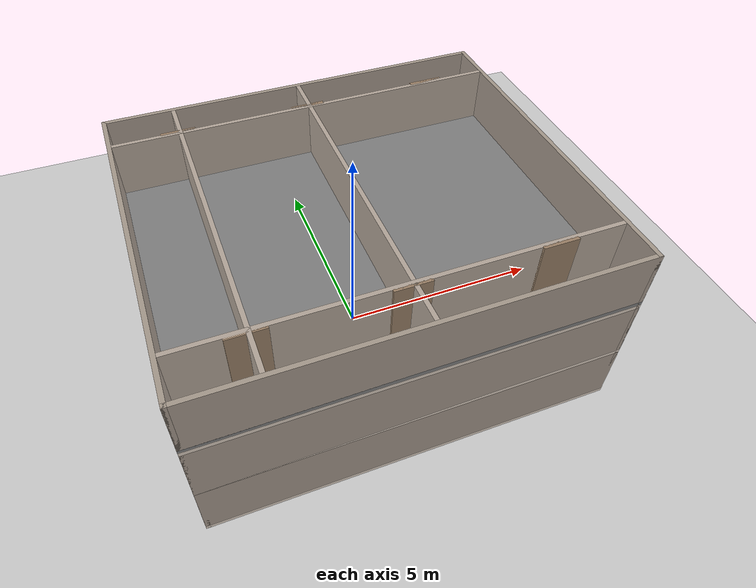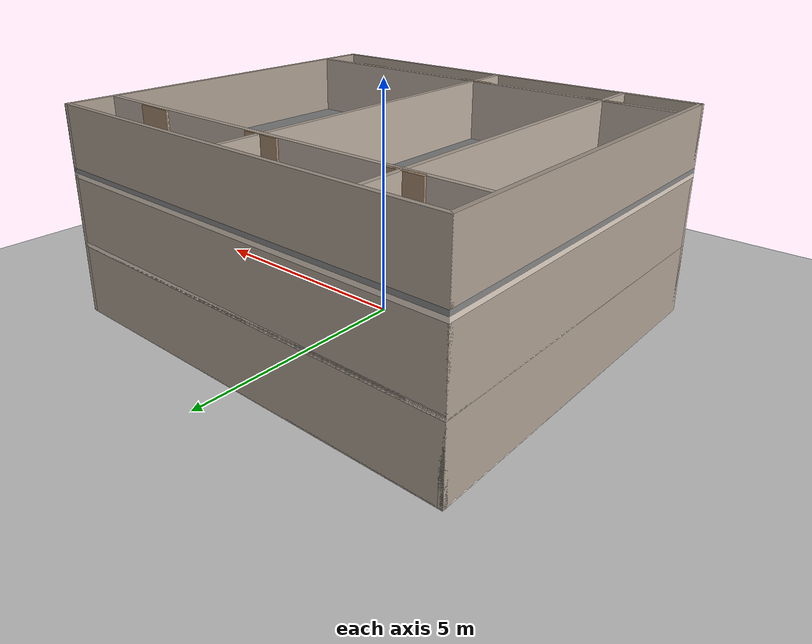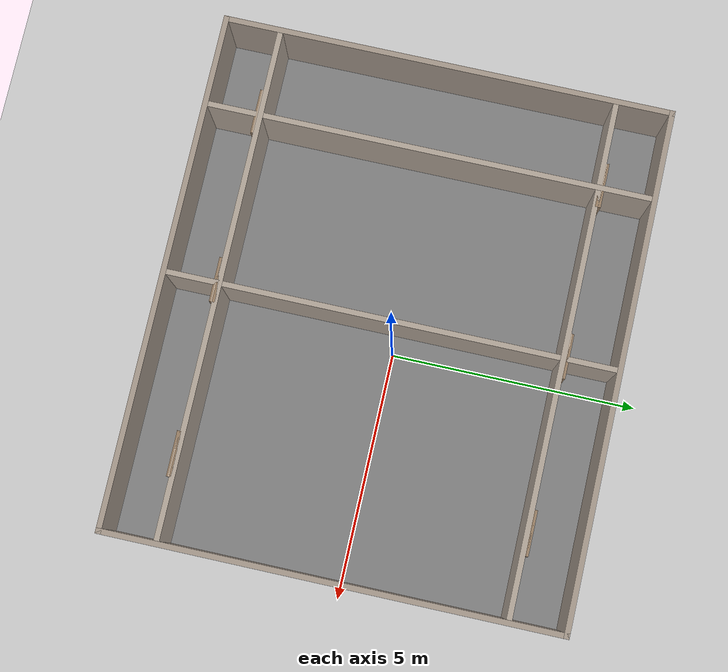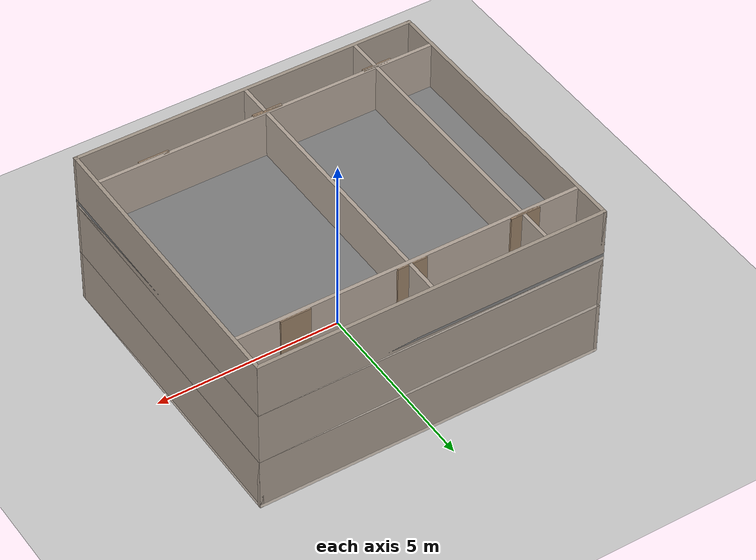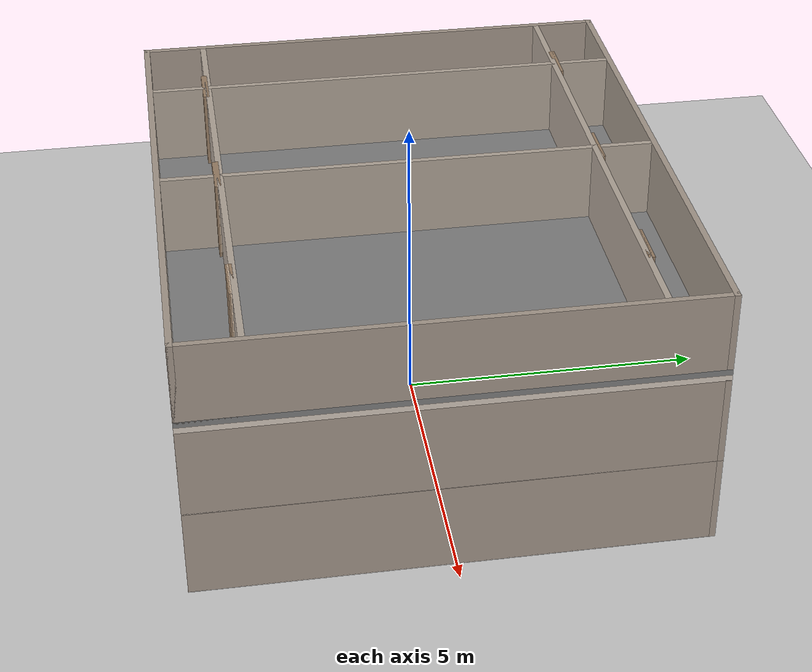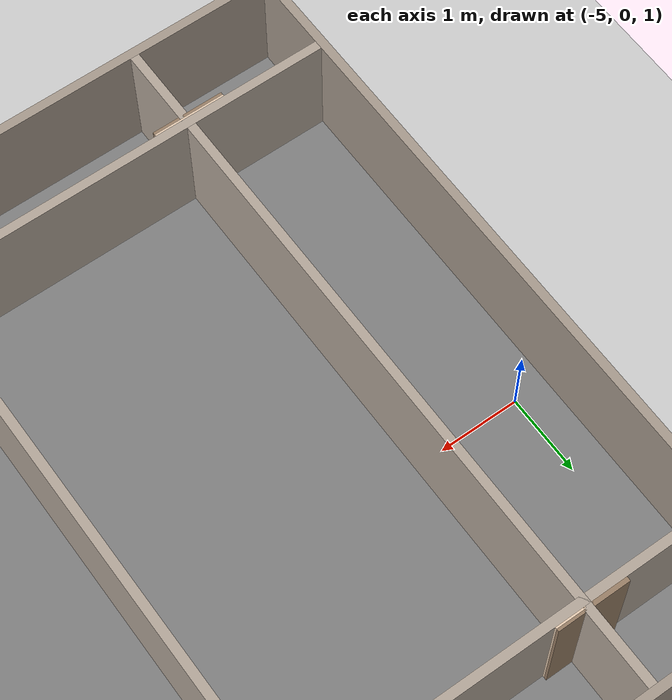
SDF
<?xml version="1.0" ?>
<sdf version="1.5">
    <world name="multi_floor_building">
        <gui fullscreen='false'>
            <camera name='user_camera'>
                <pose>15 -15 12 0 0.4 -1.5</pose>
                <view_controller>orbit</view_controller>
            </camera>
        </gui>
        <physics type="ode">
            <max_step_size>0.001</max_step_size>
            <real_time_factor>1</real_time_factor>
            <real_time_update_rate>1000</real_time_update_rate>
            <gravity>0 0 -9.81</gravity>
            <ode>
                <solver><type>quick</type><iters>50</iters><sor>1.3</sor></solver>
                <constraints><cfm>0.0</cfm><erp>0.2</erp><contact_max_correcting_vel>10.0</contact_max_correcting_vel><contact_surface_layer>0.001</contact_surface_layer></constraints>
            </ode>
        </physics>
        <scene>
            <sky><clouds><speed>12</speed></clouds></sky>
        </scene>
        <include><uri>model://sun</uri></include>
        <include><uri>model://ground_plane</uri></include>
        <include><uri>model://multi_floor_building</uri><pose>0 0 0 0 0 0</pose></include>
    </world>
</sdf>

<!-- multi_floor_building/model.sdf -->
<sdf version='1.7'>
  <model name='MultiFloorBuilding'>
    <static>true</static>

    <!-- Ground base -->
    <link name='ground_base'>
      <pose>0 0 -0.15 0 0 0</pose>
      <visual name='visual'>
        <geometry><box><size>10.4 9.2 0.2</size></box></geometry>
        <material><ambient>0.3 0.4 0.3 1</ambient><diffuse>0.4 0.5 0.4 1</diffuse></material>
      </visual>
      <collision name='collision'>
        <geometry><box><size>10.4 9.2 0.2</size></box></geometry>
      </collision>
    </link>

    <!-- Floor 0 -->
    <link name='floor_0'>
      <pose>0 0 0.05 0 0 0</pose>
      <visual name='visual'>
        <geometry><box><size>9.4 8.2 0.1</size></box></geometry>
        <material><ambient>0.8 0.75 0.7 1</ambient><diffuse>0.85 0.8 0.75 1</diffuse></material>
      </visual>
      <collision name='collision'>
        <geometry><box><size>9.4 8.2 0.1</size></box></geometry>
      </collision>
    </link>

    <!-- Outer walls -->
    <link name='outer_wall_north_0'>
      <pose>0 4.05 0.75 0 0 0</pose>
      <visual name='visual'>
        <geometry><box><size>9.4 0.1 1.5</size></box></geometry>
        <material><ambient>0.55 0.5 0.45 1</ambient><diffuse>0.65 0.6 0.55 1</diffuse></material>
      </visual>
      <collision name='collision'>
        <geometry><box><size>9.4 0.1 1.5</size></box></geometry>
      </collision>
    </link>

    <link name='outer_wall_south_0'>
      <pose>0 -4.05 0.75 0 0 0</pose>
      <visual name='visual'>
        <geometry><box><size>9.4 0.1 1.5</size></box></geometry>
        <material><ambient>0.55 0.5 0.45 1</ambient><diffuse>0.65 0.6 0.55 1</diffuse></material>
      </visual>
      <collision name='collision'>
        <geometry><box><size>9.4 0.1 1.5</size></box></geometry>
      </collision>
    </link>

    <link name='outer_wall_west_0'>
      <pose>-4.65 0 0.75 0 0 0</pose>
      <visual name='visual'>
        <geometry><box><size>0.1 8.2 1.5</size></box></geometry>
        <material><ambient>0.55 0.5 0.45 1</ambient><diffuse>0.65 0.6 0.55 1</diffuse></material>
      </visual>
      <collision name='collision'>
        <geometry><box><size>0.1 8.2 1.5</size></box></geometry>
      </collision>
    </link>

    <link name='outer_wall_east_0'>
      <pose>4.65 0 0.75 0 0 0</pose>
      <visual name='visual'>
        <geometry><box><size>0.1 8.2 1.5</size></box></geometry>
        <material><ambient>0.55 0.5 0.45 1</ambient><diffuse>0.65 0.6 0.55 1</diffuse></material>
      </visual>
      <collision name='collision'>
        <geometry><box><size>0.1 8.2 1.5</size></box></geometry>
      </collision>
    </link>

    <!-- Central corridor north wall -->
    <link name='corridor_wall_north_0'>
      <pose>0 3.05 0.75 0 0 0</pose>
      <visual name='visual'>
        <geometry><box><size>9.200000000000001 0.1 1.5</size></box></geometry>
        <material><ambient>0.6 0.55 0.5 1</ambient><diffuse>0.7 0.65 0.6 1</diffuse></material>
      </visual>
      <collision name='collision'>
        <geometry><box><size>9.200000000000001 0.1 1.5</size></box></geometry>
      </collision>
    </link>

    <!-- Central corridor south wall -->
    <link name='corridor_wall_south_0'>
      <pose>0 -3.05 0.75 0 0 0</pose>
      <visual name='visual'>
        <geometry><box><size>9.200000000000001 0.1 1.5</size></box></geometry>
        <material><ambient>0.6 0.55 0.5 1</ambient><diffuse>0.7 0.65 0.6 1</diffuse></material>
      </visual>
      <collision name='collision'>
        <geometry><box><size>9.200000000000001 0.1 1.5</size></box></geometry>
      </collision>
    </link>

    <!-- Room divider wall 0 on floor 0 -->
    <link name='room_divider_0_0'>
      <pose>-3.0500000000000007 0 0.75 0 0 0</pose>
      <visual name='visual'>
        <geometry><box><size>0.1 7.999999999999999 1.5</size></box></geometry>
        <material><ambient>0.6 0.55 0.5 1</ambient><diffuse>0.7 0.65 0.6 1</diffuse></material>
      </visual>
      <collision name='collision'>
        <geometry><box><size>0.1 7.999999999999999 1.5</size></box></geometry>
      </collision>
    </link>

    <!-- Room divider wall 1 on floor 0 -->
    <link name='room_divider_0_1'>
      <pose>0.04999999999999938 0 0.75 0 0 0</pose>
      <visual name='visual'>
        <geometry><box><size>0.1 7.999999999999999 1.5</size></box></geometry>
        <material><ambient>0.6 0.55 0.5 1</ambient><diffuse>0.7 0.65 0.6 1</diffuse></material>
      </visual>
      <collision name='collision'>
        <geometry><box><size>0.1 7.999999999999999 1.5</size></box></geometry>
      </collision>
    </link>

    <!-- North room 0 door frame on floor 0 -->
    <link name='north_door_frame_0_0'>
      <pose>-3.1000000000000005 3.1 0.75 0 0 0</pose>
      <visual name='visual'>
        <geometry><box><size>0.8 0.1 1.5</size></box></geometry>
        <material><ambient>0.5 0.4 0.3 1</ambient><diffuse>0.6 0.5 0.4 1</diffuse></material>
      </visual>
      <collision name='collision'>
        <geometry><box><size>0.8 0.1 1.5</size></box></geometry>
      </collision>
    </link>

    <!-- South room 0 door frame on floor 0 -->
    <link name='south_door_frame_0_0'>
      <pose>-3.1000000000000005 -3.1 0.75 0 0 0</pose>
      <visual name='visual'>
        <geometry><box><size>0.8 0.1 1.5</size></box></geometry>
        <material><ambient>0.5 0.4 0.3 1</ambient><diffuse>0.6 0.5 0.4 1</diffuse></material>
      </visual>
      <collision name='collision'>
        <geometry><box><size>0.8 0.1 1.5</size></box></geometry>
      </collision>
    </link>

    <!-- North room 0 door on floor 0 -->
    <link name='north_door_0_0'>
      <pose>-3.1000000000000005 3.11 0.75 0 0 0</pose>
      <visual name='visual'>
        <geometry><box><size>0.8 0.02 1.5</size></box></geometry>
        <material><ambient>0.8 0.7 0.6 1</ambient><diffuse>0.9 0.8 0.7 1</diffuse></material>
      </visual>
    </link>

    <!-- South room 0 door on floor 0 -->
    <link name='south_door_0_0'>
      <pose>-3.1000000000000005 -3.11 0.75 0 0 0</pose>
      <visual name='visual'>
        <geometry><box><size>0.8 0.02 1.5</size></box></geometry>
        <material><ambient>0.8 0.7 0.6 1</ambient><diffuse>0.9 0.8 0.7 1</diffuse></material>
      </visual>
    </link>

    <!-- North room 1 door frame on floor 0 -->
    <link name='north_door_frame_0_1'>
      <pose>-4.440892098500626e-16 3.1 0.75 0 0 0</pose>
      <visual name='visual'>
        <geometry><box><size>0.8 0.1 1.5</size></box></geometry>
        <material><ambient>0.5 0.4 0.3 1</ambient><diffuse>0.6 0.5 0.4 1</diffuse></material>
      </visual>
      <collision name='collision'>
        <geometry><box><size>0.8 0.1 1.5</size></box></geometry>
      </collision>
    </link>

    <!-- South room 1 door frame on floor 0 -->
    <link name='south_door_frame_0_1'>
      <pose>-4.440892098500626e-16 -3.1 0.75 0 0 0</pose>
      <visual name='visual'>
        <geometry><box><size>0.8 0.1 1.5</size></box></geometry>
        <material><ambient>0.5 0.4 0.3 1</ambient><diffuse>0.6 0.5 0.4 1</diffuse></material>
      </visual>
      <collision name='collision'>
        <geometry><box><size>0.8 0.1 1.5</size></box></geometry>
      </collision>
    </link>

    <!-- North room 1 door on floor 0 -->
    <link name='north_door_0_1'>
      <pose>-4.440892098500626e-16 3.11 0.75 0 0 0</pose>
      <visual name='visual'>
        <geometry><box><size>0.8 0.02 1.5</size></box></geometry>
        <material><ambient>0.8 0.7 0.6 1</ambient><diffuse>0.9 0.8 0.7 1</diffuse></material>
      </visual>
    </link>

    <!-- South room 1 door on floor 0 -->
    <link name='south_door_0_1'>
      <pose>-4.440892098500626e-16 -3.11 0.75 0 0 0</pose>
      <visual name='visual'>
        <geometry><box><size>0.8 0.02 1.5</size></box></geometry>
        <material><ambient>0.8 0.7 0.6 1</ambient><diffuse>0.9 0.8 0.7 1</diffuse></material>
      </visual>
    </link>

    <!-- North room 2 door frame on floor 0 -->
    <link name='north_door_frame_0_2'>
      <pose>3.0999999999999996 3.1 0.75 0 0 0</pose>
      <visual name='visual'>
        <geometry><box><size>0.8 0.1 1.5</size></box></geometry>
        <material><ambient>0.5 0.4 0.3 1</ambient><diffuse>0.6 0.5 0.4 1</diffuse></material>
      </visual>
      <collision name='collision'>
        <geometry><box><size>0.8 0.1 1.5</size></box></geometry>
      </collision>
    </link>

    <!-- South room 2 door frame on floor 0 -->
    <link name='south_door_frame_0_2'>
      <pose>3.0999999999999996 -3.1 0.75 0 0 0</pose>
      <visual name='visual'>
        <geometry><box><size>0.8 0.1 1.5</size></box></geometry>
        <material><ambient>0.5 0.4 0.3 1</ambient><diffuse>0.6 0.5 0.4 1</diffuse></material>
      </visual>
      <collision name='collision'>
        <geometry><box><size>0.8 0.1 1.5</size></box></geometry>
      </collision>
    </link>

    <!-- North room 2 door on floor 0 -->
    <link name='north_door_0_2'>
      <pose>3.0999999999999996 3.11 0.75 0 0 0</pose>
      <visual name='visual'>
        <geometry><box><size>0.8 0.02 1.5</size></box></geometry>
        <material><ambient>0.8 0.7 0.6 1</ambient><diffuse>0.9 0.8 0.7 1</diffuse></material>
      </visual>
    </link>

    <!-- South room 2 door on floor 0 -->
    <link name='south_door_0_2'>
      <pose>3.0999999999999996 -3.11 0.75 0 0 0</pose>
      <visual name='visual'>
        <geometry><box><size>0.8 0.02 1.5</size></box></geometry>
        <material><ambient>0.8 0.7 0.6 1</ambient><diffuse>0.9 0.8 0.7 1</diffuse></material>
      </visual>
    </link>

    <link name='stair_0_0'>
      <pose>-4.000000000000001 -2.85 0.175 0 0 0</pose>
      <visual name='visual'>
        <geometry><box><size>1.2 0.3 0.15</size></box></geometry>
        <material><ambient>0.5 0.5 0.5 1</ambient><diffuse>0.6 0.6 0.6 1</diffuse></material>
      </visual>
      <collision name='collision'>
        <geometry><box><size>1.2 0.3 0.15</size></box></geometry>
      </collision>
    </link>

    <link name='stair_0_1'>
      <pose>-4.000000000000001 -2.5500000000000003 0.32499999999999996 0 0 0</pose>
      <visual name='visual'>
        <geometry><box><size>1.2 0.3 0.15</size></box></geometry>
        <material><ambient>0.5 0.5 0.5 1</ambient><diffuse>0.6 0.6 0.6 1</diffuse></material>
      </visual>
      <collision name='collision'>
        <geometry><box><size>1.2 0.3 0.15</size></box></geometry>
      </collision>
    </link>

    <link name='stair_0_2'>
      <pose>-4.000000000000001 -2.25 0.475 0 0 0</pose>
      <visual name='visual'>
        <geometry><box><size>1.2 0.3 0.15</size></box></geometry>
        <material><ambient>0.5 0.5 0.5 1</ambient><diffuse>0.6 0.6 0.6 1</diffuse></material>
      </visual>
      <collision name='collision'>
        <geometry><box><size>1.2 0.3 0.15</size></box></geometry>
      </collision>
    </link>

    <link name='stair_0_3'>
      <pose>-4.000000000000001 -1.9500000000000002 0.625 0 0 0</pose>
      <visual name='visual'>
        <geometry><box><size>1.2 0.3 0.15</size></box></geometry>
        <material><ambient>0.5 0.5 0.5 1</ambient><diffuse>0.6 0.6 0.6 1</diffuse></material>
      </visual>
      <collision name='collision'>
        <geometry><box><size>1.2 0.3 0.15</size></box></geometry>
      </collision>
    </link>

    <link name='stair_0_4'>
      <pose>-4.000000000000001 -1.6500000000000001 0.7749999999999999 0 0 0</pose>
      <visual name='visual'>
        <geometry><box><size>1.2 0.3 0.15</size></box></geometry>
        <material><ambient>0.5 0.5 0.5 1</ambient><diffuse>0.6 0.6 0.6 1</diffuse></material>
      </visual>
      <collision name='collision'>
        <geometry><box><size>1.2 0.3 0.15</size></box></geometry>
      </collision>
    </link>

    <link name='stair_0_5'>
      <pose>-4.000000000000001 -1.35 0.925 0 0 0</pose>
      <visual name='visual'>
        <geometry><box><size>1.2 0.3 0.15</size></box></geometry>
        <material><ambient>0.5 0.5 0.5 1</ambient><diffuse>0.6 0.6 0.6 1</diffuse></material>
      </visual>
      <collision name='collision'>
        <geometry><box><size>1.2 0.3 0.15</size></box></geometry>
      </collision>
    </link>

    <link name='stair_0_6'>
      <pose>-4.000000000000001 -1.0500000000000003 1.075 0 0 0</pose>
      <visual name='visual'>
        <geometry><box><size>1.2 0.3 0.15</size></box></geometry>
        <material><ambient>0.5 0.5 0.5 1</ambient><diffuse>0.6 0.6 0.6 1</diffuse></material>
      </visual>
      <collision name='collision'>
        <geometry><box><size>1.2 0.3 0.15</size></box></geometry>
      </collision>
    </link>

    <link name='stair_0_7'>
      <pose>-4.000000000000001 -0.75 1.225 0 0 0</pose>
      <visual name='visual'>
        <geometry><box><size>1.2 0.3 0.15</size></box></geometry>
        <material><ambient>0.5 0.5 0.5 1</ambient><diffuse>0.6 0.6 0.6 1</diffuse></material>
      </visual>
      <collision name='collision'>
        <geometry><box><size>1.2 0.3 0.15</size></box></geometry>
      </collision>
    </link>

    <link name='stair_0_8'>
      <pose>-4.000000000000001 -0.4500000000000002 1.375 0 0 0</pose>
      <visual name='visual'>
        <geometry><box><size>1.2 0.3 0.15</size></box></geometry>
        <material><ambient>0.5 0.5 0.5 1</ambient><diffuse>0.6 0.6 0.6 1</diffuse></material>
      </visual>
      <collision name='collision'>
        <geometry><box><size>1.2 0.3 0.15</size></box></geometry>
      </collision>
    </link>

    <link name='stair_0_9'>
      <pose>-4.000000000000001 -0.15000000000000036 1.525 0 0 0</pose>
      <visual name='visual'>
        <geometry><box><size>1.2 0.3 0.15</size></box></geometry>
        <material><ambient>0.5 0.5 0.5 1</ambient><diffuse>0.6 0.6 0.6 1</diffuse></material>
      </visual>
      <collision name='collision'>
        <geometry><box><size>1.2 0.3 0.15</size></box></geometry>
      </collision>
    </link>

    <!-- Floor 1 -->
    <link name='floor_1'>
      <pose>0 0 1.55 0 0 0</pose>
      <visual name='visual'>
        <geometry><box><size>9.4 8.2 0.1</size></box></geometry>
        <material><ambient>0.8 0.75 0.7 1</ambient><diffuse>0.85 0.8 0.75 1</diffuse></material>
      </visual>
      <collision name='collision'>
        <geometry><box><size>9.4 8.2 0.1</size></box></geometry>
      </collision>
    </link>

    <!-- Outer walls -->
    <link name='outer_wall_north_1'>
      <pose>0 4.05 2.25 0 0 0</pose>
      <visual name='visual'>
        <geometry><box><size>9.4 0.1 1.5</size></box></geometry>
        <material><ambient>0.55 0.5 0.45 1</ambient><diffuse>0.65 0.6 0.55 1</diffuse></material>
      </visual>
      <collision name='collision'>
        <geometry><box><size>9.4 0.1 1.5</size></box></geometry>
      </collision>
    </link>

    <link name='outer_wall_south_1'>
      <pose>0 -4.05 2.25 0 0 0</pose>
      <visual name='visual'>
        <geometry><box><size>9.4 0.1 1.5</size></box></geometry>
        <material><ambient>0.55 0.5 0.45 1</ambient><diffuse>0.65 0.6 0.55 1</diffuse></material>
      </visual>
      <collision name='collision'>
        <geometry><box><size>9.4 0.1 1.5</size></box></geometry>
      </collision>
    </link>

    <link name='outer_wall_west_1'>
      <pose>-4.65 0 2.25 0 0 0</pose>
      <visual name='visual'>
        <geometry><box><size>0.1 8.2 1.5</size></box></geometry>
        <material><ambient>0.55 0.5 0.45 1</ambient><diffuse>0.65 0.6 0.55 1</diffuse></material>
      </visual>
      <collision name='collision'>
        <geometry><box><size>0.1 8.2 1.5</size></box></geometry>
      </collision>
    </link>

    <link name='outer_wall_east_1'>
      <pose>4.65 0 2.25 0 0 0</pose>
      <visual name='visual'>
        <geometry><box><size>0.1 8.2 1.5</size></box></geometry>
        <material><ambient>0.55 0.5 0.45 1</ambient><diffuse>0.65 0.6 0.55 1</diffuse></material>
      </visual>
      <collision name='collision'>
        <geometry><box><size>0.1 8.2 1.5</size></box></geometry>
      </collision>
    </link>

    <!-- Central corridor north wall -->
    <link name='corridor_wall_north_1'>
      <pose>0 3.05 2.25 0 0 0</pose>
      <visual name='visual'>
        <geometry><box><size>9.200000000000001 0.1 1.5</size></box></geometry>
        <material><ambient>0.6 0.55 0.5 1</ambient><diffuse>0.7 0.65 0.6 1</diffuse></material>
      </visual>
      <collision name='collision'>
        <geometry><box><size>9.200000000000001 0.1 1.5</size></box></geometry>
      </collision>
    </link>

    <!-- Central corridor south wall -->
    <link name='corridor_wall_south_1'>
      <pose>0 -3.05 2.25 0 0 0</pose>
      <visual name='visual'>
        <geometry><box><size>9.200000000000001 0.1 1.5</size></box></geometry>
        <material><ambient>0.6 0.55 0.5 1</ambient><diffuse>0.7 0.65 0.6 1</diffuse></material>
      </visual>
      <collision name='collision'>
        <geometry><box><size>9.200000000000001 0.1 1.5</size></box></geometry>
      </collision>
    </link>

    <!-- Room divider wall 0 on floor 1 -->
    <link name='room_divider_1_0'>
      <pose>-3.0500000000000007 0 2.25 0 0 0</pose>
      <visual name='visual'>
        <geometry><box><size>0.1 7.999999999999999 1.5</size></box></geometry>
        <material><ambient>0.6 0.55 0.5 1</ambient><diffuse>0.7 0.65 0.6 1</diffuse></material>
      </visual>
      <collision name='collision'>
        <geometry><box><size>0.1 7.999999999999999 1.5</size></box></geometry>
      </collision>
    </link>

    <!-- Room divider wall 1 on floor 1 -->
    <link name='room_divider_1_1'>
      <pose>0.04999999999999938 0 2.25 0 0 0</pose>
      <visual name='visual'>
        <geometry><box><size>0.1 7.999999999999999 1.5</size></box></geometry>
        <material><ambient>0.6 0.55 0.5 1</ambient><diffuse>0.7 0.65 0.6 1</diffuse></material>
      </visual>
      <collision name='collision'>
        <geometry><box><size>0.1 7.999999999999999 1.5</size></box></geometry>
      </collision>
    </link>

    <!-- North room 0 door frame on floor 1 -->
    <link name='north_door_frame_1_0'>
      <pose>-3.1000000000000005 3.1 2.25 0 0 0</pose>
      <visual name='visual'>
        <geometry><box><size>0.8 0.1 1.5</size></box></geometry>
        <material><ambient>0.5 0.4 0.3 1</ambient><diffuse>0.6 0.5 0.4 1</diffuse></material>
      </visual>
      <collision name='collision'>
        <geometry><box><size>0.8 0.1 1.5</size></box></geometry>
      </collision>
    </link>

    <!-- South room 0 door frame on floor 1 -->
    <link name='south_door_frame_1_0'>
      <pose>-3.1000000000000005 -3.1 2.25 0 0 0</pose>
      <visual name='visual'>
        <geometry><box><size>0.8 0.1 1.5</size></box></geometry>
        <material><ambient>0.5 0.4 0.3 1</ambient><diffuse>0.6 0.5 0.4 1</diffuse></material>
      </visual>
      <collision name='collision'>
        <geometry><box><size>0.8 0.1 1.5</size></box></geometry>
      </collision>
    </link>

    <!-- North room 0 door on floor 1 -->
    <link name='north_door_1_0'>
      <pose>-3.1000000000000005 3.11 2.25 0 0 0</pose>
      <visual name='visual'>
        <geometry><box><size>0.8 0.02 1.5</size></box></geometry>
        <material><ambient>0.8 0.7 0.6 1</ambient><diffuse>0.9 0.8 0.7 1</diffuse></material>
      </visual>
    </link>

    <!-- South room 0 door on floor 1 -->
    <link name='south_door_1_0'>
      <pose>-3.1000000000000005 -3.11 2.25 0 0 0</pose>
      <visual name='visual'>
        <geometry><box><size>0.8 0.02 1.5</size></box></geometry>
        <material><ambient>0.8 0.7 0.6 1</ambient><diffuse>0.9 0.8 0.7 1</diffuse></material>
      </visual>
    </link>

    <!-- North room 1 door frame on floor 1 -->
    <link name='north_door_frame_1_1'>
      <pose>-4.440892098500626e-16 3.1 2.25 0 0 0</pose>
      <visual name='visual'>
        <geometry><box><size>0.8 0.1 1.5</size></box></geometry>
        <material><ambient>0.5 0.4 0.3 1</ambient><diffuse>0.6 0.5 0.4 1</diffuse></material>
      </visual>
      <collision name='collision'>
        <geometry><box><size>0.8 0.1 1.5</size></box></geometry>
      </collision>
    </link>

    <!-- South room 1 door frame on floor 1 -->
    <link name='south_door_frame_1_1'>
      <pose>-4.440892098500626e-16 -3.1 2.25 0 0 0</pose>
      <visual name='visual'>
        <geometry><box><size>0.8 0.1 1.5</size></box></geometry>
        <material><ambient>0.5 0.4 0.3 1</ambient><diffuse>0.6 0.5 0.4 1</diffuse></material>
      </visual>
      <collision name='collision'>
        <geometry><box><size>0.8 0.1 1.5</size></box></geometry>
      </collision>
    </link>

    <!-- North room 1 door on floor 1 -->
    <link name='north_door_1_1'>
      <pose>-4.440892098500626e-16 3.11 2.25 0 0 0</pose>
      <visual name='visual'>
        <geometry><box><size>0.8 0.02 1.5</size></box></geometry>
        <material><ambient>0.8 0.7 0.6 1</ambient><diffuse>0.9 0.8 0.7 1</diffuse></material>
      </visual>
    </link>

    <!-- South room 1 door on floor 1 -->
    <link name='south_door_1_1'>
      <pose>-4.440892098500626e-16 -3.11 2.25 0 0 0</pose>
      <visual name='visual'>
        <geometry><box><size>0.8 0.02 1.5</size></box></geometry>
        <material><ambient>0.8 0.7 0.6 1</ambient><diffuse>0.9 0.8 0.7 1</diffuse></material>
      </visual>
    </link>

    <!-- North room 2 door frame on floor 1 -->
    <link name='north_door_frame_1_2'>
      <pose>3.0999999999999996 3.1 2.25 0 0 0</pose>
      <visual name='visual'>
        <geometry><box><size>0.8 0.1 1.5</size></box></geometry>
        <material><ambient>0.5 0.4 0.3 1</ambient><diffuse>0.6 0.5 0.4 1</diffuse></material>
      </visual>
      <collision name='collision'>
        <geometry><box><size>0.8 0.1 1.5</size></box></geometry>
      </collision>
    </link>

    <!-- South room 2 door frame on floor 1 -->
    <link name='south_door_frame_1_2'>
      <pose>3.0999999999999996 -3.1 2.25 0 0 0</pose>
      <visual name='visual'>
        <geometry><box><size>0.8 0.1 1.5</size></box></geometry>
        <material><ambient>0.5 0.4 0.3 1</ambient><diffuse>0.6 0.5 0.4 1</diffuse></material>
      </visual>
      <collision name='collision'>
        <geometry><box><size>0.8 0.1 1.5</size></box></geometry>
      </collision>
    </link>

    <!-- North room 2 door on floor 1 -->
    <link name='north_door_1_2'>
      <pose>3.0999999999999996 3.11 2.25 0 0 0</pose>
      <visual name='visual'>
        <geometry><box><size>0.8 0.02 1.5</size></box></geometry>
        <material><ambient>0.8 0.7 0.6 1</ambient><diffuse>0.9 0.8 0.7 1</diffuse></material>
      </visual>
    </link>

    <!-- South room 2 door on floor 1 -->
    <link name='south_door_1_2'>
      <pose>3.0999999999999996 -3.11 2.25 0 0 0</pose>
      <visual name='visual'>
        <geometry><box><size>0.8 0.02 1.5</size></box></geometry>
        <material><ambient>0.8 0.7 0.6 1</ambient><diffuse>0.9 0.8 0.7 1</diffuse></material>
      </visual>
    </link>

    <link name='stair_1_0'>
      <pose>-4.000000000000001 -2.85 1.675 0 0 0</pose>
      <visual name='visual'>
        <geometry><box><size>1.2 0.3 0.15</size></box></geometry>
        <material><ambient>0.5 0.5 0.5 1</ambient><diffuse>0.6 0.6 0.6 1</diffuse></material>
      </visual>
      <collision name='collision'>
        <geometry><box><size>1.2 0.3 0.15</size></box></geometry>
      </collision>
    </link>

    <link name='stair_1_1'>
      <pose>-4.000000000000001 -2.5500000000000003 1.825 0 0 0</pose>
      <visual name='visual'>
        <geometry><box><size>1.2 0.3 0.15</size></box></geometry>
        <material><ambient>0.5 0.5 0.5 1</ambient><diffuse>0.6 0.6 0.6 1</diffuse></material>
      </visual>
      <collision name='collision'>
        <geometry><box><size>1.2 0.3 0.15</size></box></geometry>
      </collision>
    </link>

    <link name='stair_1_2'>
      <pose>-4.000000000000001 -2.25 1.975 0 0 0</pose>
      <visual name='visual'>
        <geometry><box><size>1.2 0.3 0.15</size></box></geometry>
        <material><ambient>0.5 0.5 0.5 1</ambient><diffuse>0.6 0.6 0.6 1</diffuse></material>
      </visual>
      <collision name='collision'>
        <geometry><box><size>1.2 0.3 0.15</size></box></geometry>
      </collision>
    </link>

    <link name='stair_1_3'>
      <pose>-4.000000000000001 -1.9500000000000002 2.125 0 0 0</pose>
      <visual name='visual'>
        <geometry><box><size>1.2 0.3 0.15</size></box></geometry>
        <material><ambient>0.5 0.5 0.5 1</ambient><diffuse>0.6 0.6 0.6 1</diffuse></material>
      </visual>
      <collision name='collision'>
        <geometry><box><size>1.2 0.3 0.15</size></box></geometry>
      </collision>
    </link>

    <link name='stair_1_4'>
      <pose>-4.000000000000001 -1.6500000000000001 2.275 0 0 0</pose>
      <visual name='visual'>
        <geometry><box><size>1.2 0.3 0.15</size></box></geometry>
        <material><ambient>0.5 0.5 0.5 1</ambient><diffuse>0.6 0.6 0.6 1</diffuse></material>
      </visual>
      <collision name='collision'>
        <geometry><box><size>1.2 0.3 0.15</size></box></geometry>
      </collision>
    </link>

    <link name='stair_1_5'>
      <pose>-4.000000000000001 -1.35 2.425 0 0 0</pose>
      <visual name='visual'>
        <geometry><box><size>1.2 0.3 0.15</size></box></geometry>
        <material><ambient>0.5 0.5 0.5 1</ambient><diffuse>0.6 0.6 0.6 1</diffuse></material>
      </visual>
      <collision name='collision'>
        <geometry><box><size>1.2 0.3 0.15</size></box></geometry>
      </collision>
    </link>

    <link name='stair_1_6'>
      <pose>-4.000000000000001 -1.0500000000000003 2.575 0 0 0</pose>
      <visual name='visual'>
        <geometry><box><size>1.2 0.3 0.15</size></box></geometry>
        <material><ambient>0.5 0.5 0.5 1</ambient><diffuse>0.6 0.6 0.6 1</diffuse></material>
      </visual>
      <collision name='collision'>
        <geometry><box><size>1.2 0.3 0.15</size></box></geometry>
      </collision>
    </link>

    <link name='stair_1_7'>
      <pose>-4.000000000000001 -0.75 2.725 0 0 0</pose>
      <visual name='visual'>
        <geometry><box><size>1.2 0.3 0.15</size></box></geometry>
        <material><ambient>0.5 0.5 0.5 1</ambient><diffuse>0.6 0.6 0.6 1</diffuse></material>
      </visual>
      <collision name='collision'>
        <geometry><box><size>1.2 0.3 0.15</size></box></geometry>
      </collision>
    </link>

    <link name='stair_1_8'>
      <pose>-4.000000000000001 -0.4500000000000002 2.875 0 0 0</pose>
      <visual name='visual'>
        <geometry><box><size>1.2 0.3 0.15</size></box></geometry>
        <material><ambient>0.5 0.5 0.5 1</ambient><diffuse>0.6 0.6 0.6 1</diffuse></material>
      </visual>
      <collision name='collision'>
        <geometry><box><size>1.2 0.3 0.15</size></box></geometry>
      </collision>
    </link>

    <link name='stair_1_9'>
      <pose>-4.000000000000001 -0.15000000000000036 3.025 0 0 0</pose>
      <visual name='visual'>
        <geometry><box><size>1.2 0.3 0.15</size></box></geometry>
        <material><ambient>0.5 0.5 0.5 1</ambient><diffuse>0.6 0.6 0.6 1</diffuse></material>
      </visual>
      <collision name='collision'>
        <geometry><box><size>1.2 0.3 0.15</size></box></geometry>
      </collision>
    </link>

    <!-- Floor 2 -->
    <link name='floor_2'>
      <pose>0 0 3.05 0 0 0</pose>
      <visual name='visual'>
        <geometry><box><size>9.4 8.2 0.1</size></box></geometry>
        <material><ambient>0.8 0.75 0.7 1</ambient><diffuse>0.85 0.8 0.75 1</diffuse></material>
      </visual>
      <collision name='collision'>
        <geometry><box><size>9.4 8.2 0.1</size></box></geometry>
      </collision>
    </link>

    <!-- Outer walls -->
    <link name='outer_wall_north_2'>
      <pose>0 4.05 3.75 0 0 0</pose>
      <visual name='visual'>
        <geometry><box><size>9.4 0.1 1.5</size></box></geometry>
        <material><ambient>0.55 0.5 0.45 1</ambient><diffuse>0.65 0.6 0.55 1</diffuse></material>
      </visual>
      <collision name='collision'>
        <geometry><box><size>9.4 0.1 1.5</size></box></geometry>
      </collision>
    </link>

    <link name='outer_wall_south_2'>
      <pose>0 -4.05 3.75 0 0 0</pose>
      <visual name='visual'>
        <geometry><box><size>9.4 0.1 1.5</size></box></geometry>
        <material><ambient>0.55 0.5 0.45 1</ambient><diffuse>0.65 0.6 0.55 1</diffuse></material>
      </visual>
      <collision name='collision'>
        <geometry><box><size>9.4 0.1 1.5</size></box></geometry>
      </collision>
    </link>

    <link name='outer_wall_west_2'>
      <pose>-4.65 0 3.75 0 0 0</pose>
      <visual name='visual'>
        <geometry><box><size>0.1 8.2 1.5</size></box></geometry>
        <material><ambient>0.55 0.5 0.45 1</ambient><diffuse>0.65 0.6 0.55 1</diffuse></material>
      </visual>
      <collision name='collision'>
        <geometry><box><size>0.1 8.2 1.5</size></box></geometry>
      </collision>
    </link>

    <link name='outer_wall_east_2'>
      <pose>4.65 0 3.75 0 0 0</pose>
      <visual name='visual'>
        <geometry><box><size>0.1 8.2 1.5</size></box></geometry>
        <material><ambient>0.55 0.5 0.45 1</ambient><diffuse>0.65 0.6 0.55 1</diffuse></material>
      </visual>
      <collision name='collision'>
        <geometry><box><size>0.1 8.2 1.5</size></box></geometry>
      </collision>
    </link>

    <!-- Central corridor north wall -->
    <link name='corridor_wall_north_2'>
      <pose>0 3.05 3.75 0 0 0</pose>
      <visual name='visual'>
        <geometry><box><size>9.200000000000001 0.1 1.5</size></box></geometry>
        <material><ambient>0.6 0.55 0.5 1</ambient><diffuse>0.7 0.65 0.6 1</diffuse></material>
      </visual>
      <collision name='collision'>
        <geometry><box><size>9.200000000000001 0.1 1.5</size></box></geometry>
      </collision>
    </link>

    <!-- Central corridor south wall -->
    <link name='corridor_wall_south_2'>
      <pose>0 -3.05 3.75 0 0 0</pose>
      <visual name='visual'>
        <geometry><box><size>9.200000000000001 0.1 1.5</size></box></geometry>
        <material><ambient>0.6 0.55 0.5 1</ambient><diffuse>0.7 0.65 0.6 1</diffuse></material>
      </visual>
      <collision name='collision'>
        <geometry><box><size>9.200000000000001 0.1 1.5</size></box></geometry>
      </collision>
    </link>

    <!-- Room divider wall 0 on floor 2 -->
    <link name='room_divider_2_0'>
      <pose>-3.0500000000000007 0 3.75 0 0 0</pose>
      <visual name='visual'>
        <geometry><box><size>0.1 7.999999999999999 1.5</size></box></geometry>
        <material><ambient>0.6 0.55 0.5 1</ambient><diffuse>0.7 0.65 0.6 1</diffuse></material>
      </visual>
      <collision name='collision'>
        <geometry><box><size>0.1 7.999999999999999 1.5</size></box></geometry>
      </collision>
    </link>

    <!-- Room divider wall 1 on floor 2 -->
    <link name='room_divider_2_1'>
      <pose>0.04999999999999938 0 3.75 0 0 0</pose>
      <visual name='visual'>
        <geometry><box><size>0.1 7.999999999999999 1.5</size></box></geometry>
        <material><ambient>0.6 0.55 0.5 1</ambient><diffuse>0.7 0.65 0.6 1</diffuse></material>
      </visual>
      <collision name='collision'>
        <geometry><box><size>0.1 7.999999999999999 1.5</size></box></geometry>
      </collision>
    </link>

    <!-- North room 0 door frame on floor 2 -->
    <link name='north_door_frame_2_0'>
      <pose>-3.1000000000000005 3.1 3.75 0 0 0</pose>
      <visual name='visual'>
        <geometry><box><size>0.8 0.1 1.5</size></box></geometry>
        <material><ambient>0.5 0.4 0.3 1</ambient><diffuse>0.6 0.5 0.4 1</diffuse></material>
      </visual>
      <collision name='collision'>
        <geometry><box><size>0.8 0.1 1.5</size></box></geometry>
      </collision>
    </link>

    <!-- South room 0 door frame on floor 2 -->
    <link name='south_door_frame_2_0'>
      <pose>-3.1000000000000005 -3.1 3.75 0 0 0</pose>
      <visual name='visual'>
        <geometry><box><size>0.8 0.1 1.5</size></box></geometry>
        <material><ambient>0.5 0.4 0.3 1</ambient><diffuse>0.6 0.5 0.4 1</diffuse></material>
      </visual>
      <collision name='collision'>
        <geometry><box><size>0.8 0.1 1.5</size></box></geometry>
      </collision>
    </link>

    <!-- North room 0 door on floor 2 -->
    <link name='north_door_2_0'>
      <pose>-3.1000000000000005 3.11 3.75 0 0 0</pose>
      <visual name='visual'>
        <geometry><box><size>0.8 0.02 1.5</size></box></geometry>
        <material><ambient>0.8 0.7 0.6 1</ambient><diffuse>0.9 0.8 0.7 1</diffuse></material>
      </visual>
    </link>

    <!-- South room 0 door on floor 2 -->
    <link name='south_door_2_0'>
      <pose>-3.1000000000000005 -3.11 3.75 0 0 0</pose>
      <visual name='visual'>
        <geometry><box><size>0.8 0.02 1.5</size></box></geometry>
        <material><ambient>0.8 0.7 0.6 1</ambient><diffuse>0.9 0.8 0.7 1</diffuse></material>
      </visual>
    </link>

    <!-- North room 1 door frame on floor 2 -->
    <link name='north_door_frame_2_1'>
      <pose>-4.440892098500626e-16 3.1 3.75 0 0 0</pose>
      <visual name='visual'>
        <geometry><box><size>0.8 0.1 1.5</size></box></geometry>
        <material><ambient>0.5 0.4 0.3 1</ambient><diffuse>0.6 0.5 0.4 1</diffuse></material>
      </visual>
      <collision name='collision'>
        <geometry><box><size>0.8 0.1 1.5</size></box></geometry>
      </collision>
    </link>

    <!-- South room 1 door frame on floor 2 -->
    <link name='south_door_frame_2_1'>
      <pose>-4.440892098500626e-16 -3.1 3.75 0 0 0</pose>
      <visual name='visual'>
        <geometry><box><size>0.8 0.1 1.5</size></box></geometry>
        <material><ambient>0.5 0.4 0.3 1</ambient><diffuse>0.6 0.5 0.4 1</diffuse></material>
      </visual>
      <collision name='collision'>
        <geometry><box><size>0.8 0.1 1.5</size></box></geometry>
      </collision>
    </link>

    <!-- North room 1 door on floor 2 -->
    <link name='north_door_2_1'>
      <pose>-4.440892098500626e-16 3.11 3.75 0 0 0</pose>
      <visual name='visual'>
        <geometry><box><size>0.8 0.02 1.5</size></box></geometry>
        <material><ambient>0.8 0.7 0.6 1</ambient><diffuse>0.9 0.8 0.7 1</diffuse></material>
      </visual>
    </link>

    <!-- South room 1 door on floor 2 -->
    <link name='south_door_2_1'>
      <pose>-4.440892098500626e-16 -3.11 3.75 0 0 0</pose>
      <visual name='visual'>
        <geometry><box><size>0.8 0.02 1.5</size></box></geometry>
        <material><ambient>0.8 0.7 0.6 1</ambient><diffuse>0.9 0.8 0.7 1</diffuse></material>
      </visual>
    </link>

    <!-- North room 2 door frame on floor 2 -->
    <link name='north_door_frame_2_2'>
      <pose>3.0999999999999996 3.1 3.75 0 0 0</pose>
      <visual name='visual'>
        <geometry><box><size>0.8 0.1 1.5</size></box></geometry>
        <material><ambient>0.5 0.4 0.3 1</ambient><diffuse>0.6 0.5 0.4 1</diffuse></material>
      </visual>
      <collision name='collision'>
        <geometry><box><size>0.8 0.1 1.5</size></box></geometry>
      </collision>
    </link>

    <!-- South room 2 door frame on floor 2 -->
    <link name='south_door_frame_2_2'>
      <pose>3.0999999999999996 -3.1 3.75 0 0 0</pose>
      <visual name='visual'>
        <geometry><box><size>0.8 0.1 1.5</size></box></geometry>
        <material><ambient>0.5 0.4 0.3 1</ambient><diffuse>0.6 0.5 0.4 1</diffuse></material>
      </visual>
      <collision name='collision'>
        <geometry><box><size>0.8 0.1 1.5</size></box></geometry>
      </collision>
    </link>

    <!-- North room 2 door on floor 2 -->
    <link name='north_door_2_2'>
      <pose>3.0999999999999996 3.11 3.75 0 0 0</pose>
      <visual name='visual'>
        <geometry><box><size>0.8 0.02 1.5</size></box></geometry>
        <material><ambient>0.8 0.7 0.6 1</ambient><diffuse>0.9 0.8 0.7 1</diffuse></material>
      </visual>
    </link>

    <!-- South room 2 door on floor 2 -->
    <link name='south_door_2_2'>
      <pose>3.0999999999999996 -3.11 3.75 0 0 0</pose>
      <visual name='visual'>
        <geometry><box><size>0.8 0.02 1.5</size></box></geometry>
        <material><ambient>0.8 0.7 0.6 1</ambient><diffuse>0.9 0.8 0.7 1</diffuse></material>
      </visual>
    </link>

    <!-- Main Entrance (on south wall, center) -->
    <link name='entrance_frame_left'>
      <pose>-0.6 -4.05 0.75 0 0 0</pose>
      <visual name='visual'>
        <geometry><box><size>0.1 0.05 1.5</size></box></geometry>
        <material><ambient>0.4 0.3 0.2 1</ambient><diffuse>0.5 0.4 0.3 1</diffuse></material>
      </visual>
      <collision name='collision'>
        <geometry><box><size>0.1 0.05 1.5</size></box></geometry>
      </collision>
    </link>

    <link name='entrance_frame_right'>
      <pose>0.6 -4.05 0.75 0 0 0</pose>
      <visual name='visual'>
        <geometry><box><size>0.1 0.05 1.5</size></box></geometry>
        <material><ambient>0.4 0.3 0.2 1</ambient><diffuse>0.5 0.4 0.3 1</diffuse></material>
      </visual>
      <collision name='collision'>
        <geometry><box><size>0.1 0.05 1.5</size></box></geometry>
      </collision>
    </link>

    <!-- Roof -->
    <link name='roof'>
      <pose>0 0 3.15 0 0 0</pose>
      <visual name='visual'>
        <geometry><box><size>9.4 8.2 0.1</size></box></geometry>
        <material><ambient>0.4 0.4 0.4 1</ambient><diffuse>0.5 0.5 0.5 1</diffuse></material>
      </visual>
      <collision name='collision'>
        <geometry><box><size>9.4 8.2 0.1</size></box></geometry>
      </collision>
    </link>

  </model>
</sdf>
